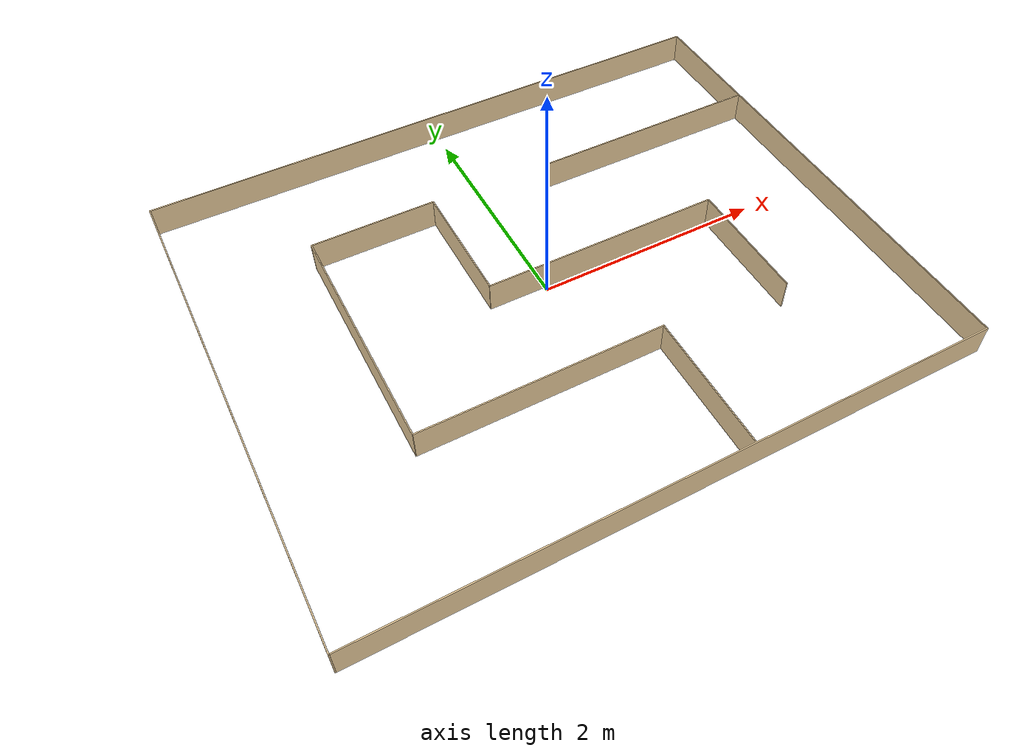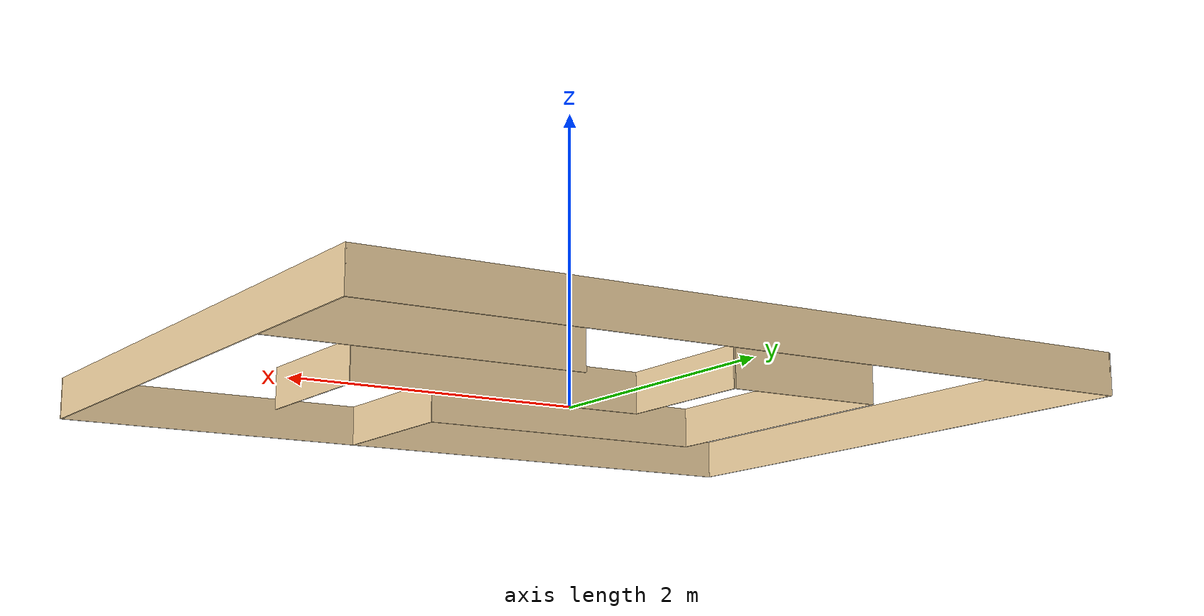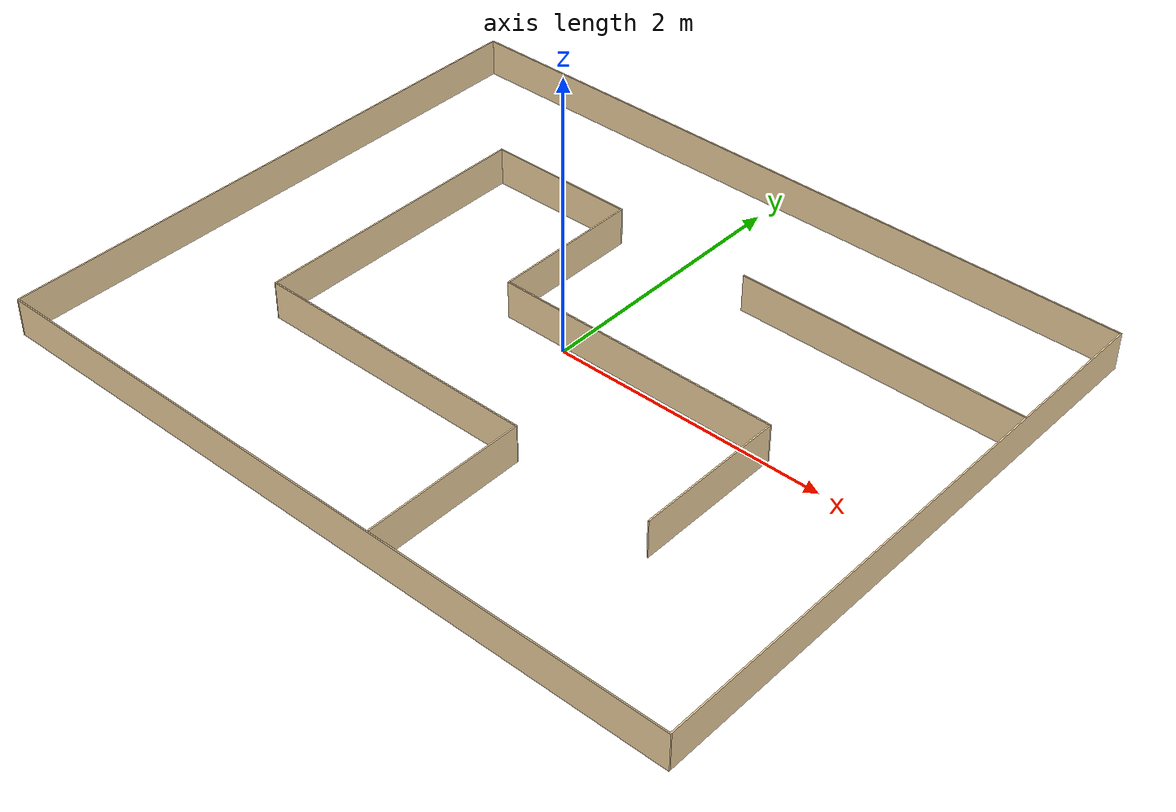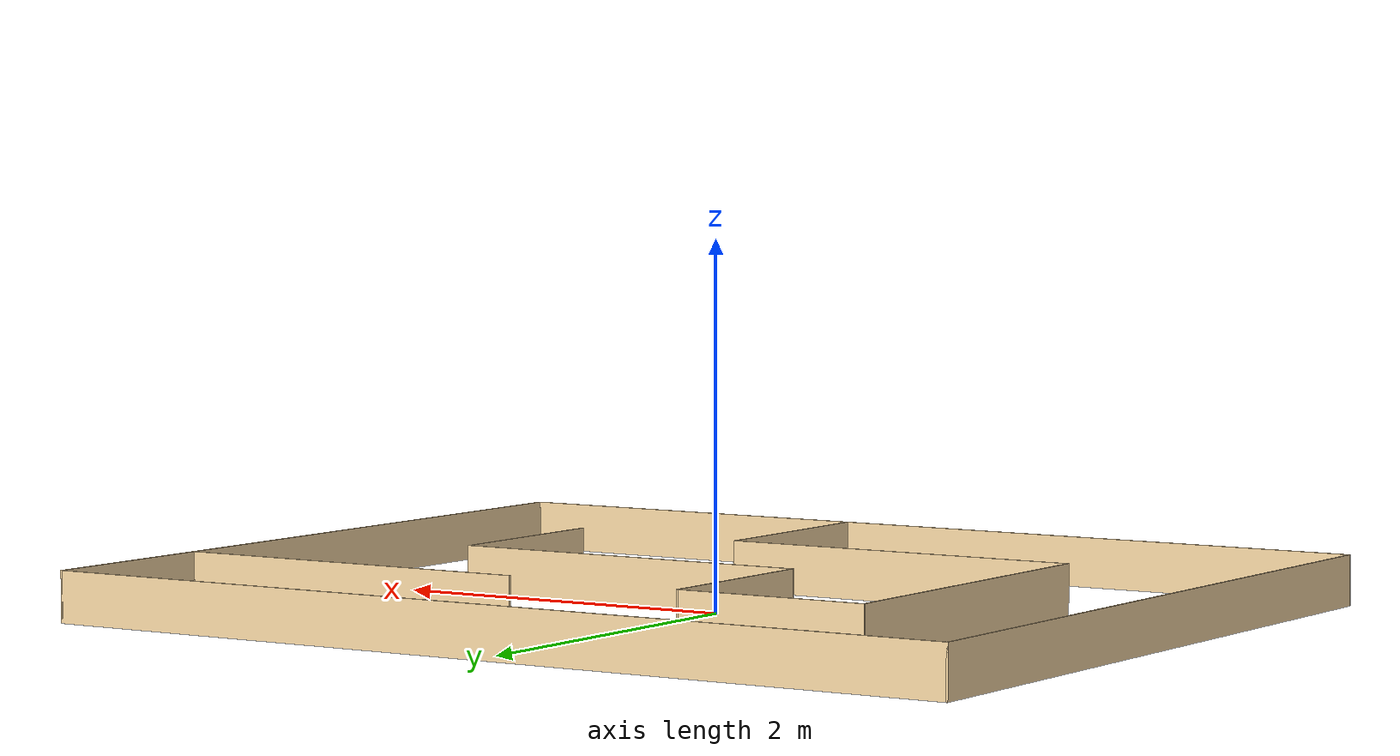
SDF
<?xml version='1.0'?>
<sdf version='1.6'>
  <model name='maze_0'>
    <link name='Wall_0'>
      <pose frame=''>0 2.175 0 0 -0 0</pose>
      <self_collide>0</self_collide>
      <kinematic>0</kinematic>
      <visual name='Wall_0_Visual'>
        <pose frame=''>0 0 0.14 0 -0 0</pose>
        <geometry>
          <box>
            <size>5.36 0.01 0.28</size>
          </box>
        </geometry>
        <material>
          <script>
            <uri>file://media/materials/scripts/gazebo.material</uri>
            <name>Gazebo/Grey</name>
          </script>
          <ambient>0.921569 0.807843 0.615686 1</ambient>
          <diffuse>0.7 0.7 0.7 1</diffuse>
          <specular>0.01 0.01 0.01 1</specular>
          <emissive>0 0 0 1</emissive>
        </material>
        <cast_shadows>1</cast_shadows>
        <transparency>0</transparency>
      </visual>
      <collision name='Wall_0_Collision'>
        <laser_retro>0</laser_retro>
        <max_contacts>10</max_contacts>
        <pose frame=''>0 0 0.14 0 -0 0</pose>
        <geometry>
          <box>
            <size>5.36 0.01 0.28</size>
          </box>
        </geometry>
        <surface>
          <friction>
            <ode>
              <mu>1</mu>
              <mu2>1</mu2>
              <fdir1>0 0 0</fdir1>
              <slip1>0</slip1>
              <slip2>0</slip2>
            </ode>
            <torsional>
              <coefficient>1</coefficient>
              <patch_radius>0</patch_radius>
              <surface_radius>0</surface_radius>
              <use_patch_radius>1</use_patch_radius>
              <ode>
                <slip>0</slip>
              </ode>
            </torsional>
          </friction>
          <bounce>
            <restitution_coefficient>0</restitution_coefficient>
            <threshold>1e+06</threshold>
          </bounce>
          <contact>
            <collide_without_contact>0</collide_without_contact>
            <collide_without_contact_bitmask>1</collide_without_contact_bitmask>
            <collide_bitmask>1</collide_bitmask>
            <ode>
              <soft_cfm>0</soft_cfm>
              <soft_erp>0.2</soft_erp>
              <kp>1e+13</kp>
              <kd>1</kd>
              <max_vel>0.01</max_vel>
              <min_depth>0</min_depth>
            </ode>
            <bullet>
              <split_impulse>1</split_impulse>
              <split_impulse_penetration_threshold>-0.01</split_impulse_penetration_threshold>
              <soft_cfm>0</soft_cfm>
              <soft_erp>0.2</soft_erp>
              <kp>1e+13</kp>
              <kd>1</kd>
            </bullet>
          </contact>
        </surface>
      </collision>
    </link>
    <link name='Wall_1'>
      <pose frame=''>2.675 0 0 0 0 -1.5708</pose>
      <self_collide>0</self_collide>
      <kinematic>0</kinematic>
      <visual name='Wall_1_Visual'>
        <pose frame=''>0 0 0.14 0 -0 0</pose>
        <geometry>
          <box>
            <size>4.36 0.01 0.28</size>
          </box>
        </geometry>
        <material>
          <script>
            <uri>file://media/materials/scripts/gazebo.material</uri>
            <name>Gazebo/Grey</name>
          </script>
          <ambient>0.921569 0.807843 0.615686 1</ambient>
          <diffuse>0.7 0.7 0.7 1</diffuse>
          <specular>0.01 0.01 0.01 1</specular>
          <emissive>0 0 0 1</emissive>
        </material>
        <cast_shadows>1</cast_shadows>
        <transparency>0</transparency>
      </visual>
      <collision name='Wall_1_Collision'>
        <laser_retro>0</laser_retro>
        <max_contacts>10</max_contacts>
        <pose frame=''>0 0 0.14 0 -0 0</pose>
        <geometry>
          <box>
            <size>4.36 0.01 0.28</size>
          </box>
        </geometry>
        <surface>
          <friction>
            <ode>
              <mu>1</mu>
              <mu2>1</mu2>
              <fdir1>0 0 0</fdir1>
              <slip1>0</slip1>
              <slip2>0</slip2>
            </ode>
            <torsional>
              <coefficient>1</coefficient>
              <patch_radius>0</patch_radius>
              <surface_radius>0</surface_radius>
              <use_patch_radius>1</use_patch_radius>
              <ode>
                <slip>0</slip>
              </ode>
            </torsional>
          </friction>
          <bounce>
            <restitution_coefficient>0</restitution_coefficient>
            <threshold>1e+06</threshold>
          </bounce>
          <contact>
            <collide_without_contact>0</collide_without_contact>
            <collide_without_contact_bitmask>1</collide_without_contact_bitmask>
            <collide_bitmask>1</collide_bitmask>
            <ode>
              <soft_cfm>0</soft_cfm>
              <soft_erp>0.2</soft_erp>
              <kp>1e+13</kp>
              <kd>1</kd>
              <max_vel>0.01</max_vel>
              <min_depth>0</min_depth>
            </ode>
            <bullet>
              <split_impulse>1</split_impulse>
              <split_impulse_penetration_threshold>-0.01</split_impulse_penetration_threshold>
              <soft_cfm>0</soft_cfm>
              <soft_erp>0.2</soft_erp>
              <kp>1e+13</kp>
              <kd>1</kd>
            </bullet>
          </contact>
        </surface>
      </collision>
    </link>
    <link name='Wall_10'>
      <pose frame=''>-1.051 1.133 0 0 -0 3.14159</pose>
      <self_collide>0</self_collide>
      <kinematic>0</kinematic>
      <visual name='Wall_10_Visual'>
        <pose frame=''>0 0 0.14 0 -0 0</pose>
        <geometry>
          <box>
            <size>1.11 0.01 0.28</size>
          </box>
        </geometry>
        <material>
          <script>
            <uri>file://media/materials/scripts/gazebo.material</uri>
            <name>Gazebo/Grey</name>
          </script>
          <ambient>0.921569 0.807843 0.615686 1</ambient>
          <diffuse>0.7 0.7 0.7 1</diffuse>
          <specular>0.01 0.01 0.01 1</specular>
          <emissive>0 0 0 1</emissive>
        </material>
        <cast_shadows>1</cast_shadows>
        <transparency>0</transparency>
      </visual>
      <collision name='Wall_10_Collision'>
        <laser_retro>0</laser_retro>
        <max_contacts>10</max_contacts>
        <pose frame=''>0 0 0.14 0 -0 0</pose>
        <geometry>
          <box>
            <size>1.11 0.01 0.28</size>
          </box>
        </geometry>
        <surface>
          <friction>
            <ode>
              <mu>1</mu>
              <mu2>1</mu2>
              <fdir1>0 0 0</fdir1>
              <slip1>0</slip1>
              <slip2>0</slip2>
            </ode>
            <torsional>
              <coefficient>1</coefficient>
              <patch_radius>0</patch_radius>
              <surface_radius>0</surface_radius>
              <use_patch_radius>1</use_patch_radius>
              <ode>
                <slip>0</slip>
              </ode>
            </torsional>
          </friction>
          <bounce>
            <restitution_coefficient>0</restitution_coefficient>
            <threshold>1e+06</threshold>
          </bounce>
          <contact>
            <collide_without_contact>0</collide_without_contact>
            <collide_without_contact_bitmask>1</collide_without_contact_bitmask>
            <collide_bitmask>1</collide_bitmask>
            <ode>
              <soft_cfm>0</soft_cfm>
              <soft_erp>0.2</soft_erp>
              <kp>1e+13</kp>
              <kd>1</kd>
              <max_vel>0.01</max_vel>
              <min_depth>0</min_depth>
            </ode>
            <bullet>
              <split_impulse>1</split_impulse>
              <split_impulse_penetration_threshold>-0.01</split_impulse_penetration_threshold>
              <soft_cfm>0</soft_cfm>
              <soft_erp>0.2</soft_erp>
              <kp>1e+13</kp>
              <kd>1</kd>
            </bullet>
          </contact>
        </surface>
      </collision>
    </link>
    <link name='Wall_11'>
      <pose frame=''>-1.601 0.083 0 0 0 -1.5708</pose>
      <self_collide>0</self_collide>
      <kinematic>0</kinematic>
      <visual name='Wall_11_Visual'>
        <pose frame=''>0 0 0.14 0 -0 0</pose>
        <geometry>
          <box>
            <size>2.11 0.01 0.28</size>
          </box>
        </geometry>
        <material>
          <script>
            <uri>file://media/materials/scripts/gazebo.material</uri>
            <name>Gazebo/Grey</name>
          </script>
          <ambient>0.921569 0.807843 0.615686 1</ambient>
          <diffuse>0.7 0.7 0.7 1</diffuse>
          <specular>0.01 0.01 0.01 1</specular>
          <emissive>0 0 0 1</emissive>
        </material>
        <cast_shadows>1</cast_shadows>
        <transparency>0</transparency>
      </visual>
      <collision name='Wall_11_Collision'>
        <laser_retro>0</laser_retro>
        <max_contacts>10</max_contacts>
        <pose frame=''>0 0 0.14 0 -0 0</pose>
        <geometry>
          <box>
            <size>2.11 0.01 0.28</size>
          </box>
        </geometry>
        <surface>
          <friction>
            <ode>
              <mu>1</mu>
              <mu2>1</mu2>
              <fdir1>0 0 0</fdir1>
              <slip1>0</slip1>
              <slip2>0</slip2>
            </ode>
            <torsional>
              <coefficient>1</coefficient>
              <patch_radius>0</patch_radius>
              <surface_radius>0</surface_radius>
              <use_patch_radius>1</use_patch_radius>
              <ode>
                <slip>0</slip>
              </ode>
            </torsional>
          </friction>
          <bounce>
            <restitution_coefficient>0</restitution_coefficient>
            <threshold>1e+06</threshold>
          </bounce>
          <contact>
            <collide_without_contact>0</collide_without_contact>
            <collide_without_contact_bitmask>1</collide_without_contact_bitmask>
            <collide_bitmask>1</collide_bitmask>
            <ode>
              <soft_cfm>0</soft_cfm>
              <soft_erp>0.2</soft_erp>
              <kp>1e+13</kp>
              <kd>1</kd>
              <max_vel>0.01</max_vel>
              <min_depth>0</min_depth>
            </ode>
            <bullet>
              <split_impulse>1</split_impulse>
              <split_impulse_penetration_threshold>-0.01</split_impulse_penetration_threshold>
              <soft_cfm>0</soft_cfm>
              <soft_erp>0.2</soft_erp>
              <kp>1e+13</kp>
              <kd>1</kd>
            </bullet>
          </contact>
        </surface>
      </collision>
    </link>
    <link name='Wall_12'>
      <pose frame=''>-0.551 -0.9675 0 0 0 -0.000476</pose>
      <self_collide>0</self_collide>
      <kinematic>0</kinematic>
      <visual name='Wall_12_Visual'>
        <pose frame=''>0 0 0.14 0 -0 0</pose>
        <geometry>
          <box>
            <size>2.11 0.01 0.28</size>
          </box>
        </geometry>
        <material>
          <script>
            <uri>file://media/materials/scripts/gazebo.material</uri>
            <name>Gazebo/Grey</name>
          </script>
          <ambient>0.921569 0.807843 0.615686 1</ambient>
          <diffuse>0.7 0.7 0.7 1</diffuse>
          <specular>0.01 0.01 0.01 1</specular>
          <emissive>0 0 0 1</emissive>
        </material>
        <cast_shadows>1</cast_shadows>
        <transparency>0</transparency>
      </visual>
      <collision name='Wall_12_Collision'>
        <laser_retro>0</laser_retro>
        <max_contacts>10</max_contacts>
        <pose frame=''>0 0 0.14 0 -0 0</pose>
        <geometry>
          <box>
            <size>2.11 0.01 0.28</size>
          </box>
        </geometry>
        <surface>
          <friction>
            <ode>
              <mu>1</mu>
              <mu2>1</mu2>
              <fdir1>0 0 0</fdir1>
              <slip1>0</slip1>
              <slip2>0</slip2>
            </ode>
            <torsional>
              <coefficient>1</coefficient>
              <patch_radius>0</patch_radius>
              <surface_radius>0</surface_radius>
              <use_patch_radius>1</use_patch_radius>
              <ode>
                <slip>0</slip>
              </ode>
            </torsional>
          </friction>
          <bounce>
            <restitution_coefficient>0</restitution_coefficient>
            <threshold>1e+06</threshold>
          </bounce>
          <contact>
            <collide_without_contact>0</collide_without_contact>
            <collide_without_contact_bitmask>1</collide_without_contact_bitmask>
            <collide_bitmask>1</collide_bitmask>
            <ode>
              <soft_cfm>0</soft_cfm>
              <soft_erp>0.2</soft_erp>
              <kp>1e+13</kp>
              <kd>1</kd>
              <max_vel>0.01</max_vel>
              <min_depth>0</min_depth>
            </ode>
            <bullet>
              <split_impulse>1</split_impulse>
              <split_impulse_penetration_threshold>-0.01</split_impulse_penetration_threshold>
              <soft_cfm>0</soft_cfm>
              <soft_erp>0.2</soft_erp>
              <kp>1e+13</kp>
              <kd>1</kd>
            </bullet>
          </contact>
        </surface>
      </collision>
    </link>
    <link name='Wall_13'>
      <pose frame=''>0.499 -1.57309 0 0 0 -1.5708</pose>
      <self_collide>0</self_collide>
      <kinematic>0</kinematic>
      <inertial>
        <inertia>
          <ixx>nan</ixx>
          <ixy>0</ixy>
          <ixz>0</ixz>
          <iyy>nan</iyy>
          <iyz>0</iyz>
          <izz>nan</izz>
        </inertia>
        <mass>0</mass>
        <pose frame=''>0 0 0 0 -0 0</pose>
      </inertial>
      <visual name='Wall_13_Visual'>
        <pose frame=''>0 0 0.14 0 -0 0</pose>
        <geometry>
          <box>
            <size>1.20741 0.01 0.28</size>
          </box>
        </geometry>
        <material>
          <script>
            <uri>file://media/materials/scripts/gazebo.material</uri>
            <name>Gazebo/Grey</name>
          </script>
          <ambient>0.921569 0.807843 0.615686 1</ambient>
          <diffuse>0.7 0.7 0.7 1</diffuse>
          <specular>0.01 0.01 0.01 1</specular>
          <emissive>0 0 0 1</emissive>
        </material>
        <cast_shadows>1</cast_shadows>
        <transparency>0</transparency>
      </visual>
      <collision name='Wall_13_Collision'>
        <laser_retro>0</laser_retro>
        <max_contacts>10</max_contacts>
        <pose frame=''>0 0 0.14 0 -0 0</pose>
        <geometry>
          <box>
            <size>1.20741 0.01 0.28</size>
          </box>
        </geometry>
        <surface>
          <friction>
            <ode>
              <mu>1</mu>
              <mu2>1</mu2>
              <fdir1>0 0 0</fdir1>
              <slip1>0</slip1>
              <slip2>0</slip2>
            </ode>
            <torsional>
              <coefficient>1</coefficient>
              <patch_radius>0</patch_radius>
              <surface_radius>0</surface_radius>
              <use_patch_radius>1</use_patch_radius>
              <ode>
                <slip>0</slip>
              </ode>
            </torsional>
          </friction>
          <bounce>
            <restitution_coefficient>0</restitution_coefficient>
            <threshold>1e+06</threshold>
          </bounce>
          <contact>
            <collide_without_contact>0</collide_without_contact>
            <collide_without_contact_bitmask>1</collide_without_contact_bitmask>
            <collide_bitmask>1</collide_bitmask>
            <ode>
              <soft_cfm>0</soft_cfm>
              <soft_erp>0.2</soft_erp>
              <kp>1e+13</kp>
              <kd>1</kd>
              <max_vel>0.01</max_vel>
              <min_depth>0</min_depth>
            </ode>
            <bullet>
              <split_impulse>1</split_impulse>
              <split_impulse_penetration_threshold>-0.01</split_impulse_penetration_threshold>
              <soft_cfm>0</soft_cfm>
              <soft_erp>0.2</soft_erp>
              <kp>1e+13</kp>
              <kd>1</kd>
            </bullet>
          </contact>
        </surface>
      </collision>
    </link>
    <link name='Wall_2'>
      <pose frame=''>0 -2.175 0 0 -0 3.14159</pose>
      <self_collide>0</self_collide>
      <kinematic>0</kinematic>
      <visual name='Wall_2_Visual'>
        <pose frame=''>0 0 0.14 0 -0 0</pose>
        <geometry>
          <box>
            <size>5.36 0.01 0.28</size>
          </box>
        </geometry>
        <material>
          <script>
            <uri>file://media/materials/scripts/gazebo.material</uri>
            <name>Gazebo/Grey</name>
          </script>
          <ambient>0.921569 0.807843 0.615686 1</ambient>
          <diffuse>0.7 0.7 0.7 1</diffuse>
          <specular>0.01 0.01 0.01 1</specular>
          <emissive>0 0 0 1</emissive>
        </material>
        <cast_shadows>1</cast_shadows>
        <transparency>0</transparency>
      </visual>
      <collision name='Wall_2_Collision'>
        <laser_retro>0</laser_retro>
        <max_contacts>10</max_contacts>
        <pose frame=''>0 0 0.14 0 -0 0</pose>
        <geometry>
          <box>
            <size>5.36 0.01 0.28</size>
          </box>
        </geometry>
        <surface>
          <friction>
            <ode>
              <mu>1</mu>
              <mu2>1</mu2>
              <fdir1>0 0 0</fdir1>
              <slip1>0</slip1>
              <slip2>0</slip2>
            </ode>
            <torsional>
              <coefficient>1</coefficient>
              <patch_radius>0</patch_radius>
              <surface_radius>0</surface_radius>
              <use_patch_radius>1</use_patch_radius>
              <ode>
                <slip>0</slip>
              </ode>
            </torsional>
          </friction>
          <bounce>
            <restitution_coefficient>0</restitution_coefficient>
            <threshold>1e+06</threshold>
          </bounce>
          <contact>
            <collide_without_contact>0</collide_without_contact>
            <collide_without_contact_bitmask>1</collide_without_contact_bitmask>
            <collide_bitmask>1</collide_bitmask>
            <ode>
              <soft_cfm>0</soft_cfm>
              <soft_erp>0.2</soft_erp>
              <kp>1e+13</kp>
              <kd>1</kd>
              <max_vel>0.01</max_vel>
              <min_depth>0</min_depth>
            </ode>
            <bullet>
              <split_impulse>1</split_impulse>
              <split_impulse_penetration_threshold>-0.01</split_impulse_penetration_threshold>
              <soft_cfm>0</soft_cfm>
              <soft_erp>0.2</soft_erp>
              <kp>1e+13</kp>
              <kd>1</kd>
            </bullet>
          </contact>
        </surface>
      </collision>
    </link>
    <link name='Wall_3'>
      <pose frame=''>-2.675 0 0 0 -0 1.5708</pose>
      <self_collide>0</self_collide>
      <kinematic>0</kinematic>
      <visual name='Wall_3_Visual'>
        <pose frame=''>0 0 0.14 0 -0 0</pose>
        <geometry>
          <box>
            <size>4.36 0.01 0.28</size>
          </box>
        </geometry>
        <material>
          <script>
            <uri>file://media/materials/scripts/gazebo.material</uri>
            <name>Gazebo/Grey</name>
          </script>
          <ambient>0.921569 0.807843 0.615686 1</ambient>
          <diffuse>0.7 0.7 0.7 1</diffuse>
          <specular>0.01 0.01 0.01 1</specular>
          <emissive>0 0 0 1</emissive>
        </material>
        <cast_shadows>1</cast_shadows>
        <transparency>0</transparency>
      </visual>
      <collision name='Wall_3_Collision'>
        <laser_retro>0</laser_retro>
        <max_contacts>10</max_contacts>
        <pose frame=''>0 0 0.14 0 -0 0</pose>
        <geometry>
          <box>
            <size>4.36 0.01 0.28</size>
          </box>
        </geometry>
        <surface>
          <friction>
            <ode>
              <mu>1</mu>
              <mu2>1</mu2>
              <fdir1>0 0 0</fdir1>
              <slip1>0</slip1>
              <slip2>0</slip2>
            </ode>
            <torsional>
              <coefficient>1</coefficient>
              <patch_radius>0</patch_radius>
              <surface_radius>0</surface_radius>
              <use_patch_radius>1</use_patch_radius>
              <ode>
                <slip>0</slip>
              </ode>
            </torsional>
          </friction>
          <bounce>
            <restitution_coefficient>0</restitution_coefficient>
            <threshold>1e+06</threshold>
          </bounce>
          <contact>
            <collide_without_contact>0</collide_without_contact>
            <collide_without_contact_bitmask>1</collide_without_contact_bitmask>
            <collide_bitmask>1</collide_bitmask>
            <ode>
              <soft_cfm>0</soft_cfm>
              <soft_erp>0.2</soft_erp>
              <kp>1e+13</kp>
              <kd>1</kd>
              <max_vel>0.01</max_vel>
              <min_depth>0</min_depth>
            </ode>
            <bullet>
              <split_impulse>1</split_impulse>
              <split_impulse_penetration_threshold>-0.01</split_impulse_penetration_threshold>
              <soft_cfm>0</soft_cfm>
              <soft_erp>0.2</soft_erp>
              <kp>1e+13</kp>
              <kd>1</kd>
            </bullet>
          </contact>
        </surface>
      </collision>
    </link>
    <link name='Wall_5'>
      <pose frame=''>1.62023 1.094 0 0 -0 0</pose>
      <self_collide>0</self_collide>
      <kinematic>0</kinematic>
      <visual name='Wall_5_Visual'>
        <pose frame=''>0 0 0.14 0 -0 0</pose>
        <geometry>
          <box>
            <size>2.11 0.01 0.28</size>
          </box>
        </geometry>
        <material>
          <script>
            <uri>file://media/materials/scripts/gazebo.material</uri>
            <name>Gazebo/Grey</name>
          </script>
          <ambient>0.921569 0.807843 0.615686 1</ambient>
          <diffuse>0.7 0.7 0.7 1</diffuse>
          <specular>0.01 0.01 0.01 1</specular>
          <emissive>0 0 0 1</emissive>
        </material>
        <cast_shadows>1</cast_shadows>
        <transparency>0</transparency>
      </visual>
      <collision name='Wall_5_Collision'>
        <laser_retro>0</laser_retro>
        <max_contacts>10</max_contacts>
        <pose frame=''>0 0 0.14 0 -0 0</pose>
        <geometry>
          <box>
            <size>2.11 0.01 0.28</size>
          </box>
        </geometry>
        <surface>
          <friction>
            <ode>
              <mu>1</mu>
              <mu2>1</mu2>
              <fdir1>0 0 0</fdir1>
              <slip1>0</slip1>
              <slip2>0</slip2>
            </ode>
            <torsional>
              <coefficient>1</coefficient>
              <patch_radius>0</patch_radius>
              <surface_radius>0</surface_radius>
              <use_patch_radius>1</use_patch_radius>
              <ode>
                <slip>0</slip>
              </ode>
            </torsional>
          </friction>
          <bounce>
            <restitution_coefficient>0</restitution_coefficient>
            <threshold>1e+06</threshold>
          </bounce>
          <contact>
            <collide_without_contact>0</collide_without_contact>
            <collide_without_contact_bitmask>1</collide_without_contact_bitmask>
            <collide_bitmask>1</collide_bitmask>
            <ode>
              <soft_cfm>0</soft_cfm>
              <soft_erp>0.2</soft_erp>
              <kp>1e+13</kp>
              <kd>1</kd>
              <max_vel>0.01</max_vel>
              <min_depth>0</min_depth>
            </ode>
            <bullet>
              <split_impulse>1</split_impulse>
              <split_impulse_penetration_threshold>-0.01</split_impulse_penetration_threshold>
              <soft_cfm>0</soft_cfm>
              <soft_erp>0.2</soft_erp>
              <kp>1e+13</kp>
              <kd>1</kd>
            </bullet>
          </contact>
        </surface>
      </collision>
    </link>
    <link name='Wall_7'>
      <pose frame=''>1.599 -0.518 0 0 -0 1.5708</pose>
      <self_collide>0</self_collide>
      <kinematic>0</kinematic>
      <visual name='Wall_7_Visual'>
        <pose frame=''>0 0 0.14 0 -0 0</pose>
        <geometry>
          <box>
            <size>1.11 0.01 0.28</size>
          </box>
        </geometry>
        <material>
          <script>
            <uri>file://media/materials/scripts/gazebo.material</uri>
            <name>Gazebo/Grey</name>
          </script>
          <ambient>0.921569 0.807843 0.615686 1</ambient>
          <diffuse>0.7 0.7 0.7 1</diffuse>
          <specular>0.01 0.01 0.01 1</specular>
          <emissive>0 0 0 1</emissive>
        </material>
        <cast_shadows>1</cast_shadows>
        <transparency>0</transparency>
      </visual>
      <collision name='Wall_7_Collision'>
        <laser_retro>0</laser_retro>
        <max_contacts>10</max_contacts>
        <pose frame=''>0 0 0.14 0 -0 0</pose>
        <geometry>
          <box>
            <size>1.11 0.01 0.28</size>
          </box>
        </geometry>
        <surface>
          <friction>
            <ode>
              <mu>1</mu>
              <mu2>1</mu2>
              <fdir1>0 0 0</fdir1>
              <slip1>0</slip1>
              <slip2>0</slip2>
            </ode>
            <torsional>
              <coefficient>1</coefficient>
              <patch_radius>0</patch_radius>
              <surface_radius>0</surface_radius>
              <use_patch_radius>1</use_patch_radius>
              <ode>
                <slip>0</slip>
              </ode>
            </torsional>
          </friction>
          <bounce>
            <restitution_coefficient>0</restitution_coefficient>
            <threshold>1e+06</threshold>
          </bounce>
          <contact>
            <collide_without_contact>0</collide_without_contact>
            <collide_without_contact_bitmask>1</collide_without_contact_bitmask>
            <collide_bitmask>1</collide_bitmask>
            <ode>
              <soft_cfm>0</soft_cfm>
              <soft_erp>0.2</soft_erp>
              <kp>1e+13</kp>
              <kd>1</kd>
              <max_vel>0.01</max_vel>
              <min_depth>0</min_depth>
            </ode>
            <bullet>
              <split_impulse>1</split_impulse>
              <split_impulse_penetration_threshold>-0.01</split_impulse_penetration_threshold>
              <soft_cfm>0</soft_cfm>
              <soft_erp>0.2</soft_erp>
              <kp>1e+13</kp>
              <kd>1</kd>
            </bullet>
          </contact>
        </surface>
      </collision>
    </link>
    <link name='Wall_8'>
      <pose frame=''>0.549 0.0325 0 0 -0 3.14112</pose>
      <self_collide>0</self_collide>
      <kinematic>0</kinematic>
      <visual name='Wall_8_Visual'>
        <pose frame=''>0 0 0.14 0 -0 0</pose>
        <geometry>
          <box>
            <size>2.11 0.01 0.28</size>
          </box>
        </geometry>
        <material>
          <script>
            <uri>file://media/materials/scripts/gazebo.material</uri>
            <name>Gazebo/Grey</name>
          </script>
          <ambient>0.921569 0.807843 0.615686 1</ambient>
          <diffuse>0.7 0.7 0.7 1</diffuse>
          <specular>0.01 0.01 0.01 1</specular>
          <emissive>0 0 0 1</emissive>
        </material>
        <cast_shadows>1</cast_shadows>
        <transparency>0</transparency>
      </visual>
      <collision name='Wall_8_Collision'>
        <laser_retro>0</laser_retro>
        <max_contacts>10</max_contacts>
        <pose frame=''>0 0 0.14 0 -0 0</pose>
        <geometry>
          <box>
            <size>2.11 0.01 0.28</size>
          </box>
        </geometry>
        <surface>
          <friction>
            <ode>
              <mu>1</mu>
              <mu2>1</mu2>
              <fdir1>0 0 0</fdir1>
              <slip1>0</slip1>
              <slip2>0</slip2>
            </ode>
            <torsional>
              <coefficient>1</coefficient>
              <patch_radius>0</patch_radius>
              <surface_radius>0</surface_radius>
              <use_patch_radius>1</use_patch_radius>
              <ode>
                <slip>0</slip>
              </ode>
            </torsional>
          </friction>
          <bounce>
            <restitution_coefficient>0</restitution_coefficient>
            <threshold>1e+06</threshold>
          </bounce>
          <contact>
            <collide_without_contact>0</collide_without_contact>
            <collide_without_contact_bitmask>1</collide_without_contact_bitmask>
            <collide_bitmask>1</collide_bitmask>
            <ode>
              <soft_cfm>0</soft_cfm>
              <soft_erp>0.2</soft_erp>
              <kp>1e+13</kp>
              <kd>1</kd>
              <max_vel>0.01</max_vel>
              <min_depth>0</min_depth>
            </ode>
            <bullet>
              <split_impulse>1</split_impulse>
              <split_impulse_penetration_threshold>-0.01</split_impulse_penetration_threshold>
              <soft_cfm>0</soft_cfm>
              <soft_erp>0.2</soft_erp>
              <kp>1e+13</kp>
              <kd>1</kd>
            </bullet>
          </contact>
        </surface>
      </collision>
    </link>
    <link name='Wall_9'>
      <pose frame=''>-0.501 0.583 0 0 -0 1.5708</pose>
      <self_collide>0</self_collide>
      <kinematic>0</kinematic>
      <visual name='Wall_9_Visual'>
        <pose frame=''>0 0 0.14 0 -0 0</pose>
        <geometry>
          <box>
            <size>1.11 0.01 0.28</size>
          </box>
        </geometry>
        <material>
          <script>
            <uri>file://media/materials/scripts/gazebo.material</uri>
            <name>Gazebo/Grey</name>
          </script>
          <ambient>0.921569 0.807843 0.615686 1</ambient>
          <diffuse>0.7 0.7 0.7 1</diffuse>
          <specular>0.01 0.01 0.01 1</specular>
          <emissive>0 0 0 1</emissive>
        </material>
        <cast_shadows>1</cast_shadows>
        <transparency>0</transparency>
      </visual>
      <collision name='Wall_9_Collision'>
        <laser_retro>0</laser_retro>
        <max_contacts>10</max_contacts>
        <pose frame=''>0 0 0.14 0 -0 0</pose>
        <geometry>
          <box>
            <size>1.11 0.01 0.28</size>
          </box>
        </geometry>
        <surface>
          <friction>
            <ode>
              <mu>1</mu>
              <mu2>1</mu2>
              <fdir1>0 0 0</fdir1>
              <slip1>0</slip1>
              <slip2>0</slip2>
            </ode>
            <torsional>
              <coefficient>1</coefficient>
              <patch_radius>0</patch_radius>
              <surface_radius>0</surface_radius>
              <use_patch_radius>1</use_patch_radius>
              <ode>
                <slip>0</slip>
              </ode>
            </torsional>
          </friction>
          <bounce>
            <restitution_coefficient>0</restitution_coefficient>
            <threshold>1e+06</threshold>
          </bounce>
          <contact>
            <collide_without_contact>0</collide_without_contact>
            <collide_without_contact_bitmask>1</collide_without_contact_bitmask>
            <collide_bitmask>1</collide_bitmask>
            <ode>
              <soft_cfm>0</soft_cfm>
              <soft_erp>0.2</soft_erp>
              <kp>1e+13</kp>
              <kd>1</kd>
              <max_vel>0.01</max_vel>
              <min_depth>0</min_depth>
            </ode>
            <bullet>
              <split_impulse>1</split_impulse>
              <split_impulse_penetration_threshold>-0.01</split_impulse_penetration_threshold>
              <soft_cfm>0</soft_cfm>
              <soft_erp>0.2</soft_erp>
              <kp>1e+13</kp>
              <kd>1</kd>
            </bullet>
          </contact>
        </surface>
      </collision>
    </link>
    <static>1</static>
    <allow_auto_disable>1</allow_auto_disable>
  </model>
</sdf>
